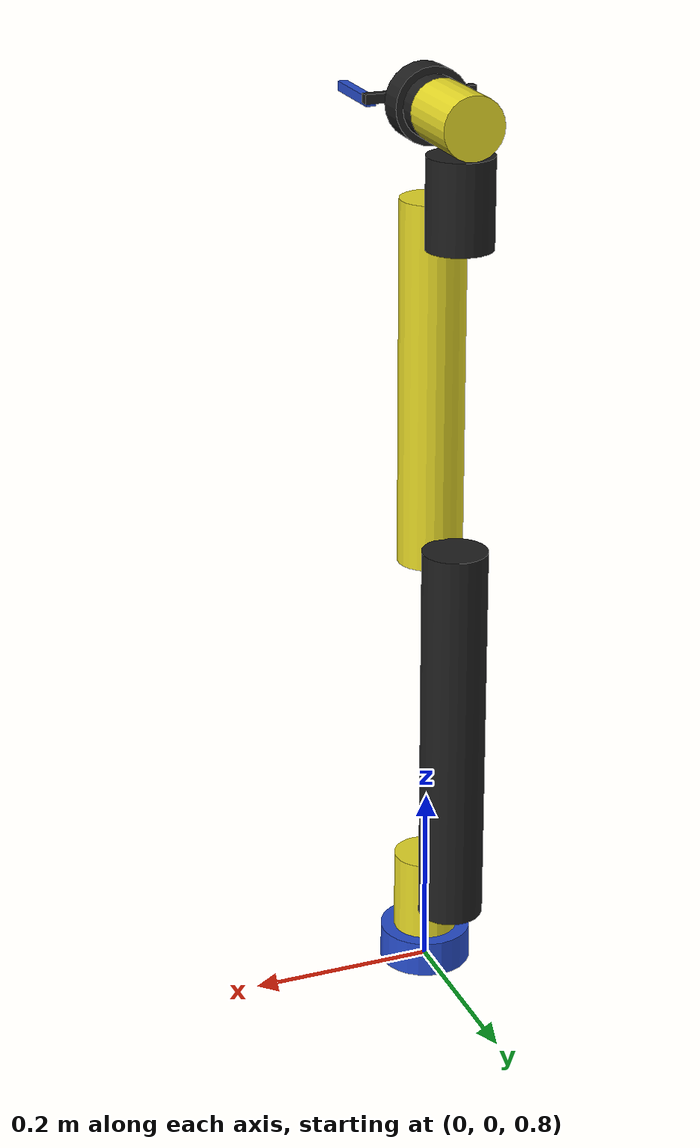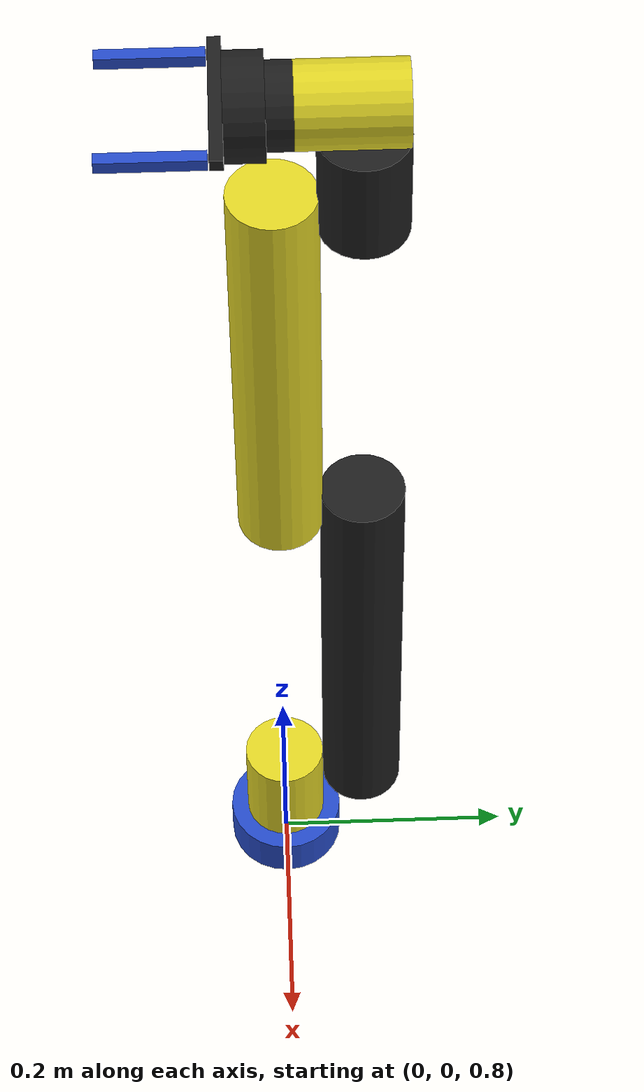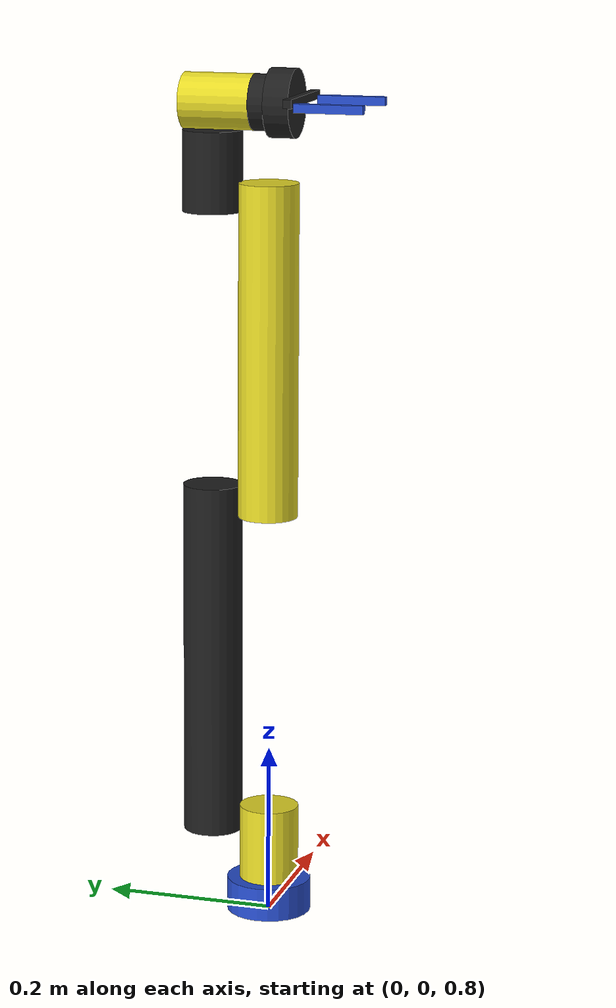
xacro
<?xml version = "1.0"?>

<robot name="custom_robot" xmlns:xacro="http://www.ros.org/wiki/xacro">

    <xacro:include filename="/home/fra/master_ws_2/src/custom_robot_description/urdf/link_joint.xacro" />
    <xacro:include filename="/home/fra/master_ws_2/src/custom_robot_description/urdf/custom_gripper.xacro"/>
    <xacro:include filename="/home/fra/master_ws_2/src/custom_robot_description/urdf/custom_robot_gazebo.xacro"/>

    <link name="world">
    </link>
    <xacro:cobot_link_cylinder name="base_link" origin_xyz="0.0 0.0 0.02" origin_rpy= "0 0 0"
                            radius="0.05" length="0.04" mass="4" i_xx="0.003033" i_xy="0" i_xz="0"
                            i_yy="0.003033" i_yz="0" i_zz="0.005" />

    <joint name="fixed" type="fixed">
        <parent link="world"/>
        <child link="base_link"/>
        <origin xyz="0 0.0 0.8" rpy="0 0 0"/>
    </joint>

    <xacro:cobot_link_cylinder name="link1" origin_xyz="0.0 0.0 0.045" origin_rpy= "0 0 0"
                            radius="0.035" length="0.09" mass="3.7" i_xx="0.003630625" i_xy="0" i_xz="0"
                            i_yy="0.003630625" i_yz="0" i_zz="0.00226625" />

    <xacro:cobot_joint name="base_link__link1" type="revolute" parent="base_link" child="link1" axis="0 0 1"
                        limit_l="-3.14159" limit_u="3.14159" limit_v="0.5" limit_e="1000"
                        origin_xyz="0 0 0.04" origin_rpy="0 0 0" />

    <xacro:cobot_link_cylinder name="link2" origin_xyz="0.0 0.0 0.2125" origin_rpy= "0 0 0"
                            radius="0.035" length="0.425"  mass="8.3" i_xx="0.499729" i_xy="0" i_xz="0"
                            i_yy="0" i_yz="0" i_zz="0.499729"/>

    <joint name="link1__link2" type="revolute">
        <parent link="link1"/>
        <child link="link2"/>
        <axis xyz="0 1 0"/>
        <limit lower="-3.14159" upper="3.14159" velocity="0.5" effort="1000.0"/>
        <origin xyz="0 0.07 0.055" rpy="0 0 0"/>
    </joint>

    <xacro:cobot_link_cylinder name="link3" origin_xyz="0.0 0.0 0.196" origin_rpy= "0 0 0"
                            radius="0.035" length="0.392" mass="2.3" i_xx="0.117809067" i_xy="0" i_xz="0"
                            i_yy="0" i_yz="0" i_zz="0.117809067" />

    <xacro:cobot_joint name="link2__link3" type="revolute" parent="link2" child="link3" axis="0 1 0"
                        limit_l="-3.14159" limit_u="3.14159" limit_v="0.5" limit_e="1000"
                        origin_xyz="0 -0.0675 0.39" origin_rpy="0 0 0" />

    <xacro:cobot_link_cylinder name="link4" origin_xyz="0.0 0.0 0.047" origin_rpy= "0 0 0"
                            radius="0.035" length="0.094" mass="1.2" i_xx="0.0035344" i_xy="0" i_xz="0"
                            i_yy="0" i_yz="0" i_zz="0.0035344" />

    <xacro:cobot_joint name="link3__link4" type="revolute" parent="link3" child="link4" axis="0 1 0"
                        limit_l="-3.14159" limit_u="3.14159" limit_v="0.5" limit_e="1000"
                        origin_xyz="0 0.0675 0.357" origin_rpy="0 0 0" />

    <xacro:cobot_link_cylinder name="link5" origin_xyz="0.0 0.0 0.009" origin_rpy= "0 0 0"
                            radius="0.0325" length="0.083" mass="1.2" i_xx="0.0027556" i_xy="0" i_xz="0"
                            i_yy="0" i_yz="0" i_zz="0.0027556" />

    <xacro:cobot_joint name="link4__link5" type="revolute" parent="link4" child="link5" axis="0 1 0"
                        limit_l="-3.14159" limit_u="3.14159" limit_v="0.5" limit_e="1000"
                        origin_xyz="0 0.0 0.1265" origin_rpy="1.57 0 0" />

    <xacro:cobot_link_cylinder name="link6" origin_xyz="0.0 0.0 0.01" origin_rpy= "0 0 0"
                            radius="0.0325" length="0.02" mass="0.2" i_xx="0.000059479" i_xy="0" i_xz="0"
                            i_yy="0.000059479" i_yz="0" i_zz="0.000105625" />

    <xacro:cobot_joint name="link5__link6" type="revolute" parent="link5" child="link6" axis="0 0 1"
                        limit_l="-3.14159" limit_u="3.14159" limit_v="0.5" limit_e="1000"
                        origin_xyz="0 0.0 0.0505" origin_rpy="0 0 0" />

    <!--put end effector tool-->

    <link name="tool0">
    </link>

    <joint name="link6__tool0" type="fixed">
        <parent link="link6"/>
        <child link="tool0"/>
        <origin xyz="0.0 0.0 0.02" rpy="0.0 0.0 0.0"/>
    </joint>

    <link name="picking_point">
    </link>

    <joint name="tool0_picking_point" type="fixed">
        <parent link="tool0"/>
        <child link="picking_point"/>
        <origin xyz="0.0 0.0 0.08" rpy="0.0 0.0 0.0"/>
    </joint>

    <xacro:custom_gripper parent="tool0" origin_xyz="0 0 0" />

    <!-- Add transmission to each joint-->

    <xacro:transmission name="trans_base_link__link1"
                        joint_name="base_link__link1"
                        actuator_name="motor_base_link__link1" />

    <xacro:transmission name="trans_link1__link2"
                        joint_name="link1__link2"
                        actuator_name="motor_link1__link2" />

    <xacro:transmission name="trans_link2__link3"
                        joint_name="link2__link3"
                        actuator_name="motor_link2__link3" />

    <xacro:transmission name="trans_link3__link4"
                        joint_name="link3__link4"
                        actuator_name="motor_link3__link4" />

    <xacro:transmission name="trans_link4__link5"
                        joint_name="link4__link5"
                        actuator_name="motor_link4__link5" />

    <xacro:transmission name="trans_link5__link6"
                        joint_name="link5__link6"
                        actuator_name="motor_link5__link6" />

    <!-- ROS2 control tag -->

    <ros2_control name="GazeboSimSystem" type="system">
        <hardware>
            <plugin>
                <plugin>gazebo_ros2_control/GazeboSystem</plugin>
            </plugin>
        </hardware>
        <joint name="base_link__link1">
            <command_interface name="position">
                <param name="min">-6.28</param>
                <param name="max">6.28</param>
            </command_interface>
            <state_interface name="position">
                <param name="initial_value">0.0</param>
            </state_interface>
            <state_interface name="velocity" />
        </joint>
        <joint name="link1__link2">
            <command_interface name="position">
                <param name="min">-6.28</param>
                <param name="max">6.28</param>
            </command_interface>
            <state_interface name="position" >
                <param name="initial_value">0.0</param>
            </state_interface>
            <state_interface name="velocity" />
        </joint>
        <joint name="link2__link3">
            <command_interface name="position">
                <param name="min">-6.28</param>
                <param name="max">6.28</param>
            </command_interface>
            <state_interface name="position" >
                <param name="initial_value">0.0</param>
            </state_interface>
            <state_interface name="velocity" />
        </joint>
        <joint name="link3__link4">
            <command_interface name="position">
                <param name="min">-6.28</param>
                <param name="max">6.28</param>
            </command_interface>
            <state_interface name="position" >
                <param name="initial_value">0.0</param>
            </state_interface>
            <state_interface name="velocity" />
        </joint>
        <joint name="link4__link5">
            <command_interface name="position">
                <param name="min">-6.28</param>
                <param name="max">6.28</param>
            </command_interface>
            <state_interface name="position" >
                <param name="initial_value">0.0</param>
            </state_interface>
            <state_interface name="velocity" />
        </joint>
        <joint name="link5__link6">
            <command_interface name="position">
                <param name="min">-6.28</param>
                <param name="max">6.28</param>
            </command_interface>
            <state_interface name="position" >
                <param name="initial_value">0.0</param>
            </state_interface>
            <state_interface name="velocity" />
        </joint>
        <joint name="finger_right_joint">
            <command_interface name="position" />
            <state_interface name="position" >
                <param name="initial_value">0.0</param>
            </state_interface>
            <state_interface name="velocity" />
        </joint>

        <joint name="finger_left_joint">
            <param name="mimic">finger_right_joint</param>
            <param name="multiplier">-1</param>
            <command_interface name="position" />
            <state_interface name="position" >
                <param name="initial_value">0.0</param>
            </state_interface>
            <state_interface name="velocity" />
        </joint>

    </ros2_control>

</robot>

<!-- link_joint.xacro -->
<robot xmlns:xacro="http://www.ros.org/wiki/xacro">

    <xacro:macro name="cobot_link_cylinder" params="name origin_xyz origin_rpy radius length mass i_xx i_xy i_xz i_yy i_yz i_zz">
        <link name="${name}">
            <inertial>
                <origin xyz="${origin_xyz}" rpy="${origin_rpy}"/>
                <mass value="${mass}"/>
                <inertia ixx="${i_xx}" ixy="${i_xy}" ixz="${i_xz}" iyy="${i_yy}" iyz="${i_yz}" izz="${i_zz}"/>
            </inertial>
            <visual>
                <geometry>
                    <cylinder radius="${radius}" length="${length}"/>
                </geometry>
                <origin xyz="${origin_xyz}" rpy="${origin_rpy}"/>
            </visual>
            <collision>
                <geometry>
                    <cylinder radius="${radius}" length="${length}"/>
                </geometry>
                <origin xyz="${origin_xyz}" rpy="${origin_rpy}"/>
            </collision>
        </link>
    </xacro:macro>

    <xacro:macro name="cobot_link_box" params="name origin_xyz origin_rpy size mass i_xx i_xy i_xz i_yy i_yz i_zz">
        <link name="${name}">
            <inertial>
                <origin xyz="${origin_xyz}" rpy="${origin_rpy}"/>
                <mass value="${mass}"/>
                <inertia ixx="${i_xx}" ixy="${i_xy}" ixz="${i_xz}" iyy="${i_yy}" iyz="${i_yz}" izz="${i_zz}"/>
            </inertial>
            <visual>
                <geometry>
                    <box size="${size}"/>
                </geometry>
                <origin xyz="${origin_xyz}" rpy="${origin_rpy}"/>
            </visual>
            <collision>
                <geometry>
                    <box size="${size}"/>
                </geometry>
                <origin xyz="${origin_xyz}" rpy="${origin_rpy}"/>
            </collision>
        </link>
    </xacro:macro>

    <xacro:macro name="cobot_joint" params="name type parent child axis limit_l limit_u limit_v limit_e origin_xyz origin_rpy">
        <joint name="${name}" type="${type}">
            <parent link="${parent}"/>
            <child link="${child}"/>
            <axis xyz="${axis}"/>
            <limit lower="${limit_l}" upper="${limit_u}" velocity="${limit_v}" effort="${limit_e}"/>
            <origin xyz="${origin_xyz}" rpy="${origin_rpy}"/>
        </joint>
    </xacro:macro>

    <xacro:macro name="transmission" params="name joint_name actuator_name">
        <transmission name="${name}" >
            <type>transmission_interface/SimpleTransmission</type>
            <joint name = "${joint_name}" >
                <hardwareInterface>hardware_interface/EffortJointInterface</hardwareInterface>
            </joint>
            <actuator name="${actuator_name}" >
                <hardwareInterface>hardware_interface/EffortJointInterface</hardwareInterface>
                <mechanicalReduction>1</mechanicalReduction>
            </actuator>
        </transmission>
    </xacro:macro>

    <xacro:macro name="transmission_effort" params="name joint_name actuator_name">
        <transmission name="${name}" >
            <type>transmission_interface/SimpleTransmission</type>
            <joint name = "${joint_name}" >
                <hardwareInterface>hardware_interface/EffortJointInterface</hardwareInterface>
            </joint>
            <actuator name="${actuator_name}" >
                <hardwareInterface>hardware_interface/EffortJointInterface</hardwareInterface>
                <mechanicalReduction>1</mechanicalReduction>
            </actuator>
        </transmission>
    </xacro:macro>

    <ros2_control name="CobotHardware" type="system">
        <hardware>
            <plugin>ros2_control_demo_hardware/CobotSystemEffortOnlyHardware</plugin>
            <!-- Modifica il plugin con quello effettivo che utilizzi -->
        </hardware>
        <joint name="base_link__link1">
            <state_interface name="effort"/>
            <command_interface name="effort"/>
        </joint>
        <joint name="link1__link2">
            <state_interface name="effort"/>
            <command_interface name="effort"/>
        </joint>

        <joint name="link2__link3">
            <state_interface name="effort"/>
            <command_interface name="effort"/>
        </joint>

        <joint name="link3__link4">
            <state_interface name="effort"/>
            <command_interface name="effort"/>
        </joint>

        <joint name="link4__link5">
            <state_interface name="effort"/>
            <command_interface name="effort"/>
        </joint>

        <joint name="link5__link6">
            <state_interface name="effort"/>
            <command_interface name="effort"/>
        </joint>

        <!-- Aggiungi altri giunti con lo stesso formato -->
    </ros2_control>

</robot>

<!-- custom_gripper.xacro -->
<robot xmlns:xacro="http://www.ros.org/wiki/xacro">

    <xacro:include filename="/home/fra/master_ws_2/src/custom_robot_description/urdf/link_joint.xacro"/>
    <xacro:include filename="/home/fra/master_ws_2/src/custom_robot_description/urdf/custom_robot_gazebo.xacro"/>

    <!-- Model a gripper-->
    <xacro:macro name="custom_gripper" params = "parent origin_xyz" >

        <xacro:cobot_link_cylinder name="gripper_connector" origin_xyz="0.0 0.0 0.015" origin_rpy= "0 0 0"
                            radius="0.04" length="0.03" mass="0.5" i_xx="0.0002375" i_xy="0" i_xz="0"
                            i_yy="0.0002375" i_yz="0" i_zz="0.00006666666667" />

        <joint name="{parent}__gripper_connector" type="fixed">
            <parent link="${parent}"/>
            <child link="gripper_connector"/>
            <origin xyz="${origin_xyz}" rpy="0.0 0.0 0.0"/>
        </joint>

        <xacro:cobot_link_box name="finger_support" origin_xyz="0 0.005 0.005" origin_rpy="0 0 0"
                                size="0.120 0.01 0.01" mass="0.25" i_xx="0.0003" i_xy="0" i_xz="0"
                            i_yy="0.0003" i_yz="0" i_zz="0.0003"/>

        <joint name="finger_support__gripper_connector" type="fixed">
            <parent link="gripper_connector"/>
            <child link="finger_support"/>
            <origin xyz="0 0 0.03" rpy="0.0 0.0 0.0"/>
        </joint>

        <xacro:cobot_link_box name="finger_right" origin_xyz="0 0 0.04" origin_rpy="0 0 0"
                                size="0.01 0.01 0.08" mass="0.2" i_xx="0.00042667" i_xy="0" i_xz="0"
                            i_yy="0.00042667" i_yz="0" i_zz="0.0000083"/>
        <xacro:cobot_link_box name="finger_left" origin_xyz="0 0 0.04" origin_rpy="0 0 0"
                                size="0.01 0.01 0.08" mass="0.2" i_xx="0.00042667" i_xy="0" i_xz="0"
                            i_yy="0.00042667" i_yz="0" i_zz="0.0000083"/>

        <joint name="finger_right_joint" type="prismatic">
            <parent link="finger_support"/>
            <child link="finger_right"/>
            <axis xyz="1 0 0"/>
            <limit lower="0" upper="0.044" velocity="0.5" effort="400"/>
            <origin xyz="-0.05 0.0 0.011" rpy="0 0 0"/>
            <dynamics damping="1" friction="2"/>
        </joint>
        <xacro:transmission_effort name="trans_finger_right_joint"
                        joint_name="finger_right_joint"
                        actuator_name="motor_finger_right_joint" />

        <joint name="finger_left_joint" type="prismatic">
            <parent link="finger_support"/>
            <child link="finger_left"/>
            <axis xyz="1 0 0"/>
            <limit lower="-0.044" upper="0" velocity="0.5" effort="400"/>
            <origin xyz="0.05 0.0 0.011" rpy="0 0 0"/>
            <dynamics friction="2"/>
            <mimic joint="finger_right_joint" multiplier="-1.0" offset="0" />
        </joint>

        <xacro:transmission_effort name="trans_finger_left_joint"
                        joint_name="finger_left_joint"
                        actuator_name="motor_finger_left_joint" />

        <xacro:mimic_joint_plugin_gazebo  parent_joint="finger_right_joint" mimic_joint="finger_left_joint"
                                            has_pid="false" multiplier="-1.0" max_effort="200" />

    </xacro:macro>

</robot>
